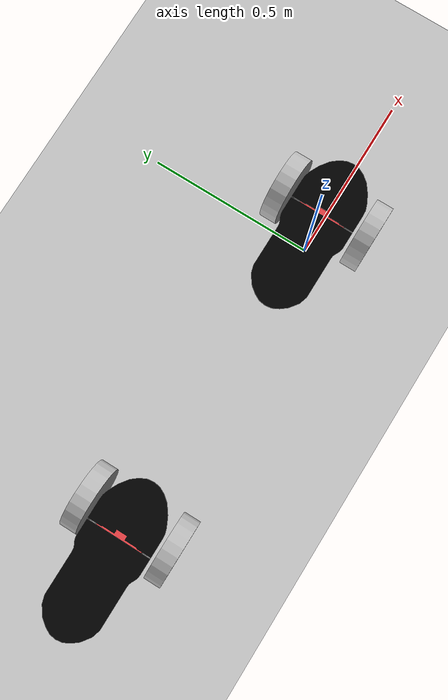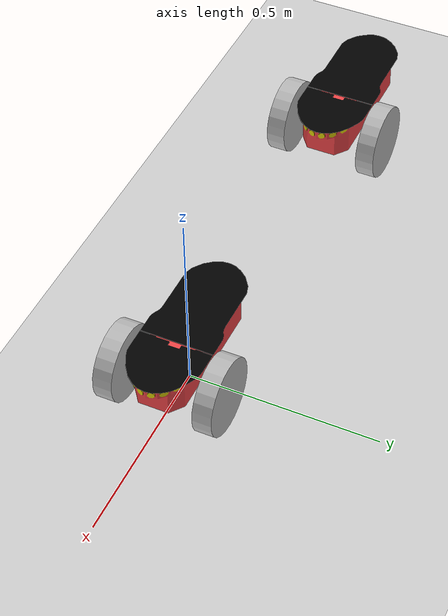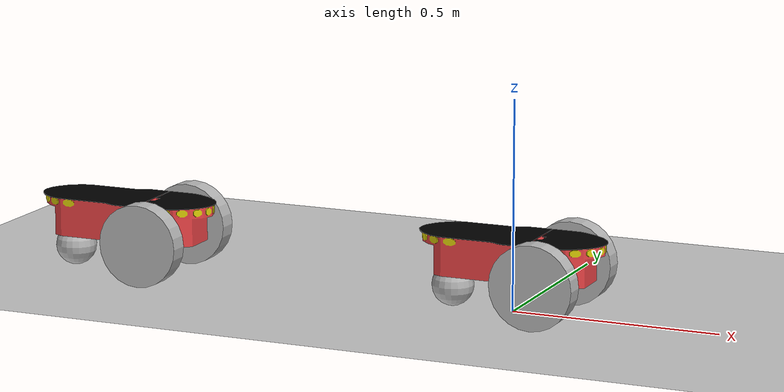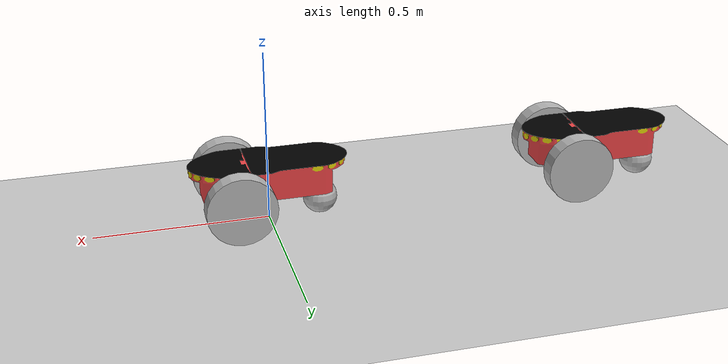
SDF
<?xml version="1.0" ?>
<sdf version="1.5">
  <world name="default">
    <!-- A global light source -->
    <include>
      <uri>model://sun</uri>
    </include>
    <!-- A ground plane -->
    <include>
      <uri>model://ground_plane</uri>
    </include>
    <model name="simple_tb">
        <static>false</static>
        <link name='chassis'>
          <pose>0 0 .1 0 0 0</pose>
          <collision name='collision'>
            <geometry>
              <box>
                <size>.4 .2 .1</size>
              </box>
            </geometry>
          </collision>

          <visual name='visual'>
	    <pose>0 0 0.05 0 0 0</pose>
            <geometry>
              <mesh>
          	<uri>model://pioneer2dx/meshes/chassis.dae</uri>
                <scale>0.9 0.5 0.5</scale>
              </mesh>
            </geometry>
          </visual>

          <collision name='caster_collision'>
            <pose>-0.15 0 -0.05 0 0 0</pose>
            <geometry>
              <sphere>
              <radius>.05</radius>
            </sphere>
          </geometry>

          <surface>
            <friction>
              <ode>
                <mu>0</mu>
                <mu2>0</mu2>
                <slip1>1.0</slip1>
                <slip2>1.0</slip2>
              </ode>
            </friction>
          </surface>
        </collision>

        <visual name='caster_visual'>
          <pose>-0.15 0 -0.05 0 0 0</pose>
          <geometry>
            <sphere>
              <radius>.05</radius>
            </sphere>
          </geometry>
        </visual>
      </link>
      <link name="left_wheel">
        <pose>0.1 0.13 0.1 0 1.5707 1.5707</pose>
        <collision name="collision">
          <geometry>
            <cylinder>
              <radius>.1</radius>
              <length>.05</length>
            </cylinder>
          </geometry>
        </collision>
        <visual name="visual">
          <geometry>
            <cylinder>
              <radius>.1</radius>
              <length>.05</length>
            </cylinder>
          </geometry>
        </visual>
      </link>

      <link name="right_wheel">
        <pose>0.1 -0.13 0.1 0 1.5707 1.5707</pose>
        <collision name="collision">
          <geometry>
            <cylinder>
              <radius>.1</radius>
              <length>.05</length>
            </cylinder>
          </geometry>
        </collision>
        <visual name="visual">
          <geometry>
            <cylinder>
              <radius>.1</radius>
              <length>.05</length>
            </cylinder>
          </geometry>
        </visual>
      </link>
      <joint type="revolute" name="left_wheel_hinge">
        <pose>0 0 -0.03 0 0 0</pose>
        <child>left_wheel</child>
        <parent>chassis</parent>
        <axis>
          <xyz>0 0 1</xyz>
        </axis>
      </joint>

      <joint type="revolute" name="right_wheel_hinge">
        <pose>0 0 0.03 0 0 0</pose>
        <child>right_wheel</child>
        <parent>chassis</parent>
        <axis>
          <xyz>0 0 1</xyz>
        </axis>
      </joint>

      <plugin name="model_drive" filename="libmodel_drive.so"/>
    </model>
    <model name="simple_tb2">
        <static>false</static>
        <link name='chassis'>
          <pose>-1 0 .1 0 0 0</pose>
          <collision name='collision'>
            <geometry>
              <box>
                <size>.4 .2 .1</size>
              </box>
            </geometry>
          </collision>

          <visual name='visual'>
	    <pose>0 0 0.05 0 0 0</pose>
            <geometry>
              <mesh>
          	<uri>model://pioneer2dx/meshes/chassis.dae</uri>
                <scale>0.9 0.5 0.5</scale>
              </mesh>
            </geometry>
          </visual>

          <collision name='caster_collision'>
            <pose>-0.15 0 -0.05 0 0 0</pose>
            <geometry>
              <sphere>
              <radius>.05</radius>
            </sphere>
          </geometry>

          <surface>
            <friction>
              <ode>
                <mu>0</mu>
                <mu2>0</mu2>
                <slip1>1.0</slip1>
                <slip2>1.0</slip2>
              </ode>
            </friction>
          </surface>
        </collision>

        <visual name='caster_visual'>
          <pose>-0.15 0 -0.05 0 0 0</pose>
          <geometry>
            <sphere>
              <radius>.05</radius>
            </sphere>
          </geometry>
        </visual>
      </link>
      <link name="left_wheel">
        <pose>-0.9 0.13 0.1 0 1.5707 1.5707</pose>
        <collision name="collision">
          <geometry>
            <cylinder>
              <radius>.1</radius>
              <length>.05</length>
            </cylinder>
          </geometry>
        </collision>
        <visual name="visual">
          <geometry>
            <cylinder>
              <radius>.1</radius>
              <length>.05</length>
            </cylinder>
          </geometry>
        </visual>
      </link>

      <link name="right_wheel">
        <pose>-0.9 -0.13 0.1 0 1.5707 1.5707</pose>
        <collision name="collision">
          <geometry>
            <cylinder>
              <radius>.1</radius>
              <length>.05</length>
            </cylinder>
          </geometry>
        </collision>
        <visual name="visual">
          <geometry>
            <cylinder>
              <radius>.1</radius>
              <length>.05</length>
            </cylinder>
          </geometry>
        </visual>
      </link>
      <joint type="revolute" name="left_wheel_hinge">
        <pose>0 0 -0.03 0 0 0</pose>
        <child>left_wheel</child>
        <parent>chassis</parent>
        <axis>
          <xyz>0 0 1</xyz>
        </axis>
      </joint>

      <joint type="revolute" name="right_wheel_hinge">
        <pose>0 0 0.03 0 0 0</pose>
        <child>right_wheel</child>
        <parent>chassis</parent>
        <axis>
          <xyz>0 0 1</xyz>
        </axis>
      </joint>

      <plugin name="model_follow" filename="libmodel_follow.so"/>
    </model>
  </world>
</sdf>
